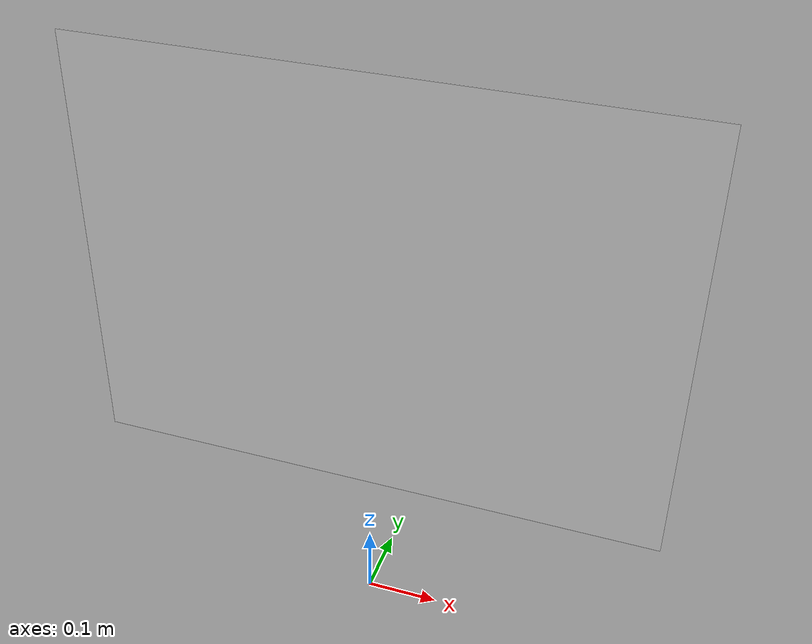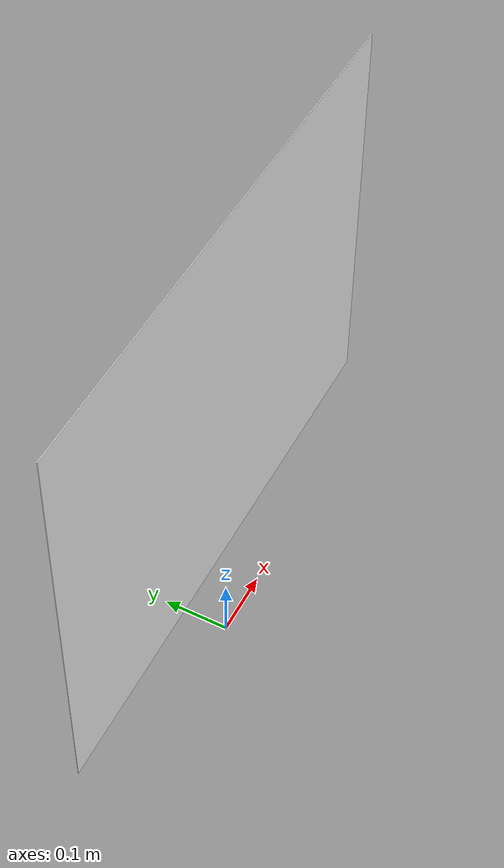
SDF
<?xml version='1.0'?>
<sdf version='1.5'>
  <model name='calibration_target'>

    <link name='marker'>
      <pose frame=''>0 0 0.5 1.57 0 0</pose>
      <visual name='visual'>
        <geometry>
          <box>
            <size>0.8 0.6 0.001</size>
          </box>
        </geometry>
        <material>
          <script>
            <uri>model://calibration_target/materials/scripts</uri>
            <uri>model://calibration_target/materials/textures</uri>
            <name>calibration_target/Marker</name>
          </script>
          <ambient>1 1 1 1</ambient>
          <diffuse>1 1 1 1</diffuse>
          <specular>0 0 0 1</specular>
          <emissive>1 1 1 0</emissive>
          <shader type='vertex'>
            <normal_map>__default__</normal_map>
          </shader>
        </material>
        <pose frame=''>0 0 0 0 -0 0</pose>
        <cast_shadows>1</cast_shadows>
        <transparency>0</transparency>
      </visual>
      <collision name='collision'>
        <laser_retro>0</laser_retro>
        <max_contacts>10</max_contacts>
        <pose frame=''>0 0 0 0 -0 0</pose>
        <geometry>
          <box>
            <size>0.1778 0.1778 1e-05</size>
          </box>
        </geometry>
      </collision>
    </link>
    <static>1</static>
    <allow_auto_disable>1</allow_auto_disable>

  </model>
</sdf>
